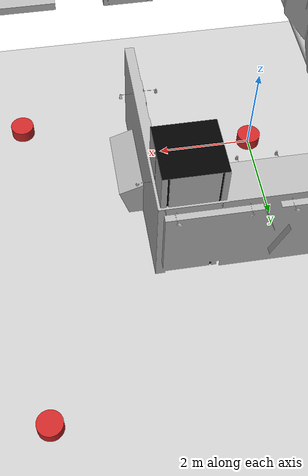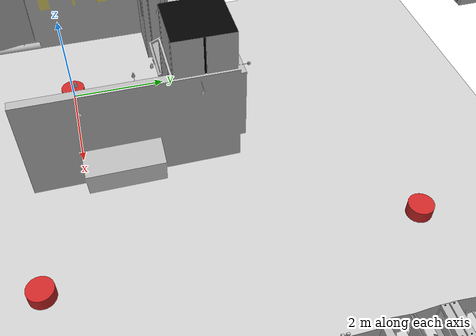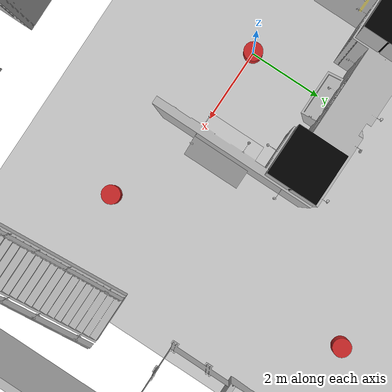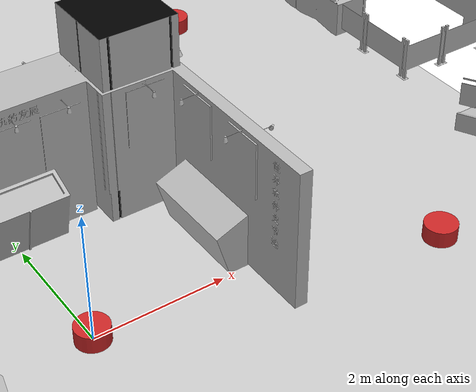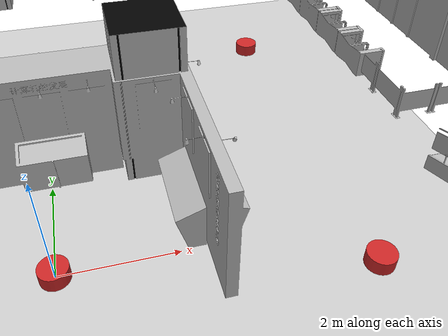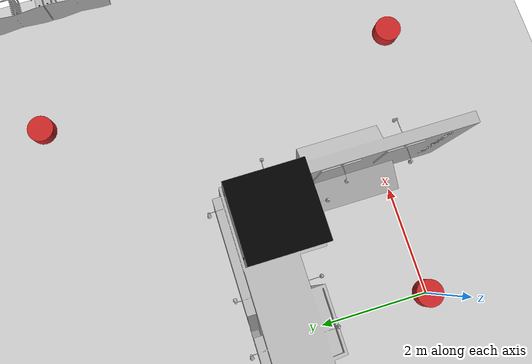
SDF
<sdf version="1.6">
 <world name="default">
  <light name="sun" type="directional">
   <pose>0 0 10 0 -0 0</pose>
   <diffuse>0.8 0.8 0.8 1</diffuse>
   <specular>0.2 0.2 0.2 1</specular>
   <attenuation>
    <range>1000</range>
    <constant>0.9</constant>
    <linear>0.01</linear>
    <quadratic>0.001</quadratic>
   </attenuation>
   <direction>-0.5 0.1 -0.9</direction>
  </light>
  <gravity>0 0 -9.8</gravity>
  <magnetic_field>6e-06 2.3e-05 -4.2e-05</magnetic_field>
  <atmosphere type="adiabatic"/>
  <physics name="default_physics" default="0" type="ode">
   <max_step_size>0.001</max_step_size>
   <real_time_factor>1</real_time_factor>
   <real_time_update_rate>1000</real_time_update_rate>
  </physics>
  <scene><ambient>0.4 0.4 0.4 1</ambient><background>0.7 0.7 0.7 1</background><shadows>1</shadows></scene>
  <spherical_coordinates>
   <surface_model>EARTH_WGS84</surface_model>
   <latitude_deg>0</latitude_deg>
   <longitude_deg>0</longitude_deg>
   <elevation>0</elevation>
   <heading_deg>0</heading_deg>
  </spherical_coordinates>
  <model name="iscas_museum">
   <link name="link">
    <inertial><mass>15</mass></inertial>
    <collision name="collision">
     <pose>0 0 0 0 0 -1.57</pose>
     <geometry><mesh><uri>../iscas_museum/meshes/ISCAS_museum.dae</uri></mesh></geometry>
    </collision>
    <visual name="visual">
     <pose>0 0 0 0 0 -1.57</pose>
     <geometry><mesh><uri>../iscas_museum/meshes/ISCAS_museum.dae</uri></mesh></geometry>
    </visual>
   </link>
   <static>1</static>
   <pose>-0.135953 -0.335522 0 0 -0 0</pose>
  </model>
  <model name="ISCAS_groundplane">
   <static>1</static>
   <link name="link">
    <collision name="collision">
     <geometry><plane><normal>0 0 1</normal><size>20 22</size></plane></geometry>
     <surface><friction><ode><mu>100</mu><mu2>50</mu2></ode></friction></surface>
    </collision>
    <visual name="visual">
     <cast_shadows>0</cast_shadows>
     <geometry><plane><normal>0 0 1</normal><size>20 22</size></plane></geometry>
     <material>
      <script>
       <uri>../ISCAS_groundplane/materials/scripts</uri>
       <uri>../ISCAS_groundplane/materials/textures</uri>
       <name>ISCAS_groundplane/Image</name>
      </script>
     </material>
    </visual>
   </link>
   <pose>0.447221 0.09218 0 0 -0 0</pose>
  </model>
  <model name="cylinder_0">
   <link name="link">
    <inertial>
     <mass>0.128591</mass>
     <inertia>
      <ixx>0.00474038</ixx>
      <ixy>0</ixy>
      <ixz>0</ixz>
      <iyy>0.00474038</iyy>
      <iyz>0</iyz>
      <izz>0.00414085</izz>
     </inertia>
    </inertial>
    <visual name="visual">
     <geometry><cylinder><radius>0.25</radius><length>0.5</length></cylinder></geometry>
     <material>
      <script><name>Gazebo/RedBright</name><uri>file://media/materials/scripts/gazebo.material</uri></script>
     </material>
    </visual>
    <collision name="collision">
     <geometry><cylinder><radius>0.25</radius><length>0.5</length></cylinder></geometry>
     <surface>
      <friction>
       <ode><mu>1</mu><mu2>1</mu2><fdir1>0 0 0</fdir1><slip1>0</slip1><slip2>0</slip2></ode>
       <torsional>
        <coefficient>1</coefficient>
        <patch_radius>0</patch_radius>
        <surface_radius>0</surface_radius>
        <use_patch_radius>1</use_patch_radius>
        <ode><slip>0</slip></ode>
       </torsional>
      </friction>
      <bounce><restitution_coefficient>0</restitution_coefficient><threshold>1e+06</threshold></bounce>
      <contact>
       <collide_without_contact>0</collide_without_contact>
       <collide_without_contact_bitmask>1</collide_without_contact_bitmask>
       <collide_bitmask>1</collide_bitmask>
       <ode>
        <soft_cfm>0</soft_cfm>
        <soft_erp>0.2</soft_erp>
        <kp>1e+13</kp>
        <kd>1</kd>
        <max_vel>0.01</max_vel>
        <min_depth>0</min_depth>
       </ode>
       <bullet>
        <split_impulse>1</split_impulse>
        <split_impulse_penetration_threshold>-0.01</split_impulse_penetration_threshold>
        <soft_cfm>0</soft_cfm>
        <soft_erp>0.2</soft_erp>
        <kp>1e+13</kp>
        <kd>1</kd>
       </bullet>
      </contact>
     </surface>
    </collision>
   </link>
   <static>0</static>
  </model>
  <model name="cylinder_1">
   <link name="link">
    <inertial>
     <mass>0.128591</mass>
     <inertia>
      <ixx>0.00474038</ixx>
      <ixy>0</ixy>
      <ixz>0</ixz>
      <iyy>0.00474038</iyy>
      <iyz>0</iyz>
      <izz>0.00414085</izz>
     </inertia>
    </inertial>
    <visual name="visual">
     <geometry><cylinder><radius>0.25</radius><length>0.5</length></cylinder></geometry>
     <material>
      <script><name>Gazebo/RedBright</name><uri>file://media/materials/scripts/gazebo.material</uri></script>
     </material>
    </visual>
    <collision name="collision">
     <geometry><cylinder><radius>0.25</radius><length>0.5</length></cylinder></geometry>
     <surface>
      <friction>
       <ode><mu>1</mu><mu2>1</mu2><fdir1>0 0 0</fdir1><slip1>0</slip1><slip2>0</slip2></ode>
       <torsional>
        <coefficient>1</coefficient>
        <patch_radius>0</patch_radius>
        <surface_radius>0</surface_radius>
        <use_patch_radius>1</use_patch_radius>
        <ode><slip>0</slip></ode>
       </torsional>
      </friction>
      <bounce><restitution_coefficient>0</restitution_coefficient><threshold>1e+06</threshold></bounce>
      <contact>
       <collide_without_contact>0</collide_without_contact>
       <collide_without_contact_bitmask>1</collide_without_contact_bitmask>
       <collide_bitmask>1</collide_bitmask>
       <ode>
        <soft_cfm>0</soft_cfm>
        <soft_erp>0.2</soft_erp>
        <kp>1e+13</kp>
        <kd>1</kd>
        <max_vel>0.01</max_vel>
        <min_depth>0</min_depth>
       </ode>
       <bullet>
        <split_impulse>1</split_impulse>
        <split_impulse_penetration_threshold>-0.01</split_impulse_penetration_threshold>
        <soft_cfm>0</soft_cfm>
        <soft_erp>0.2</soft_erp>
        <kp>1e+13</kp>
        <kd>1</kd>
       </bullet>
      </contact>
     </surface>
    </collision>
   </link>
   <static>0</static>
   <pose>5 -1 0 0 -0 0</pose>
  </model>
  <model name="cylinder_2">
   <link name="link">
    <inertial>
     <mass>0.128591</mass>
     <inertia>
      <ixx>0.00474038</ixx>
      <ixy>0</ixy>
      <ixz>0</ixz>
      <iyy>0.00474038</iyy>
      <iyz>0</iyz>
      <izz>0.00414085</izz>
     </inertia>
    </inertial>
    <visual name="visual">
     <geometry><cylinder><radius>0.25</radius><length>0.5</length></cylinder></geometry>
     <material>
      <script><name>Gazebo/RedBright</name><uri>file://media/materials/scripts/gazebo.material</uri></script>
     </material>
    </visual>
    <collision name="collision">
     <geometry><cylinder><radius>0.25</radius><length>0.5</length></cylinder></geometry>
     <surface>
      <friction>
       <ode><mu>1</mu><mu2>1</mu2><fdir1>0 0 0</fdir1><slip1>0</slip1><slip2>0</slip2></ode>
       <torsional>
        <coefficient>1</coefficient>
        <patch_radius>0</patch_radius>
        <surface_radius>0</surface_radius>
        <use_patch_radius>1</use_patch_radius>
        <ode><slip>0</slip></ode>
       </torsional>
      </friction>
      <bounce><restitution_coefficient>0</restitution_coefficient><threshold>1e+06</threshold></bounce>
      <contact>
       <collide_without_contact>0</collide_without_contact>
       <collide_without_contact_bitmask>1</collide_without_contact_bitmask>
       <collide_bitmask>1</collide_bitmask>
       <ode>
        <soft_cfm>0</soft_cfm>
        <soft_erp>0.2</soft_erp>
        <kp>1e+13</kp>
        <kd>1</kd>
        <max_vel>0.01</max_vel>
        <min_depth>0</min_depth>
       </ode>
       <bullet>
        <split_impulse>1</split_impulse>
        <split_impulse_penetration_threshold>-0.01</split_impulse_penetration_threshold>
        <soft_cfm>0</soft_cfm>
        <soft_erp>0.2</soft_erp>
        <kp>1e+13</kp>
        <kd>1</kd>
       </bullet>
      </contact>
     </surface>
    </collision>
   </link>
   <static>0</static>
   <pose>5 6 0 0 -0 0</pose>
  </model>
 </world>
</sdf>
